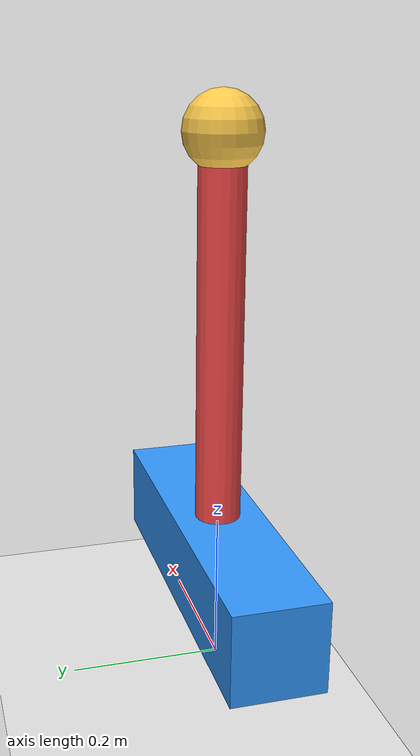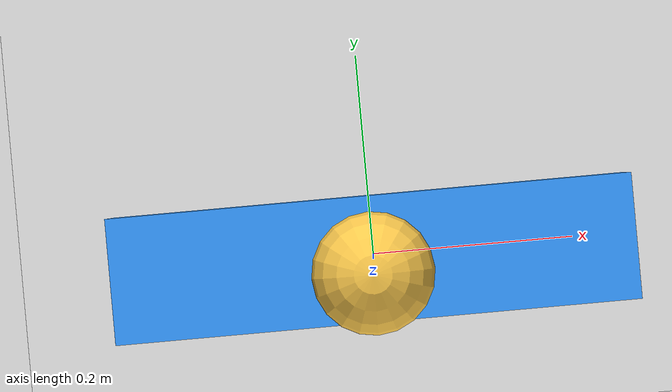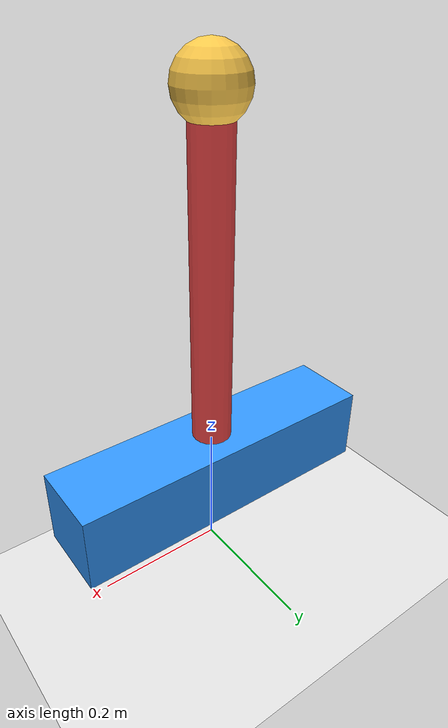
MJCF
<mujoco model="cartpole">
  <!-- 全局参数: 仿真步长 20ms (50Hz)，标准 RL 环境节奏 -->
  <option timestep="0.02"/>

  <!-- 默认值: 给所有关节加一点阻尼，避免数值振荡 -->
  <default>
    <joint damping="0.1"/>
  </default>

  <worldbody>
    <!-- 光源 (没有光照则渲染是黑的) -->
    <light name="light" pos="0 0 3" dir="0 0 -1" diffuse="0.8 0.8 0.8"/>

    <!-- 地面 (纯视觉 + 兜底碰撞) -->
    <geom name="floor" type="plane" size="2 2 0.1" rgba="0.9 0.9 0.9 1"/>

    <!-- 小车 body: 悬空 0.15m, 包含一个滑动关节 (沿 X 轴平移) -->
    <body name="cart" pos="0 0 0.15">
      <joint name="slider" type="slide" axis="1 0 0" range="-1.2 1.2"/>
      <geom name="cart_geom" type="box" size="0.25 0.06 0.06" rgba="0.2 0.6 1 1"/>

      <!-- 摆杆 body (小车的子体): 包含一个铰链关节 (绕 Y 轴旋转) -->
      <body name="pole" pos="0 0 0.06">
        <joint name="hinge" type="hinge" axis="0 1 0" range="-180 180"/>
        <geom name="pole_geom" type="capsule" size="0.03 0.25" pos="0 0 0.25"
              rgba="1 0.3 0.3 1"/>
        <geom name="pole_mass" type="sphere" size="0.05" pos="0 0 0.5"
              rgba="1 0.8 0.3 1"/>
      </body>
    </body>
  </worldbody>

  <!-- 执行器: motor 表示"力矩控制"，gear 把 ctrl 放大 10 倍 (可理解为力臂) -->
  <actuator>
    <motor name="cart_motor" joint="slider" gear="10" ctrlrange="-3 3"/>
  </actuator>
</mujoco>
